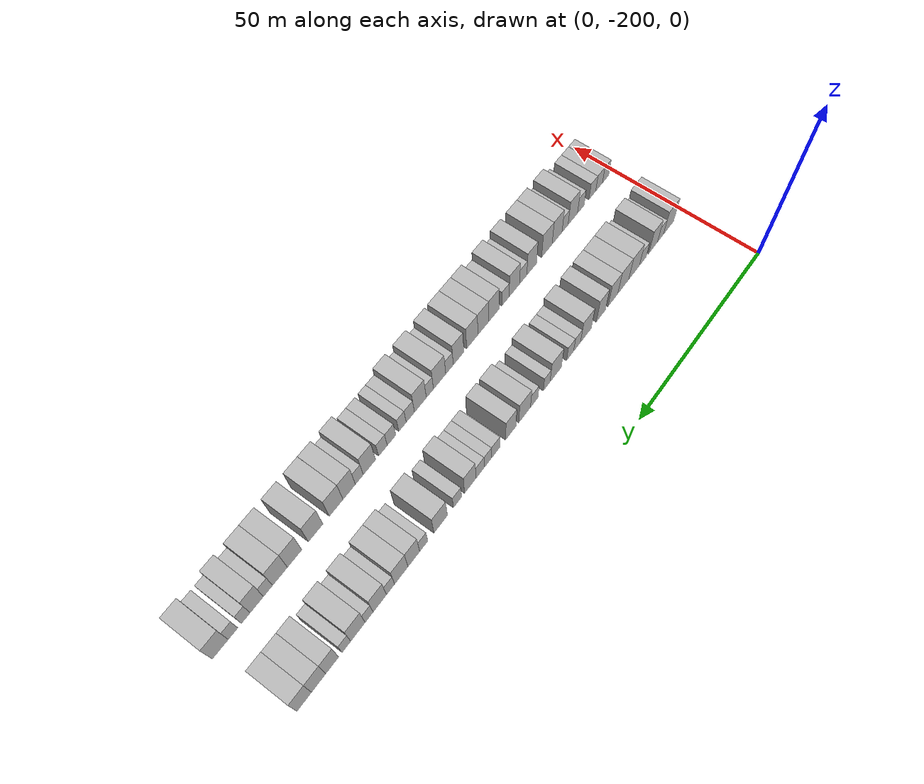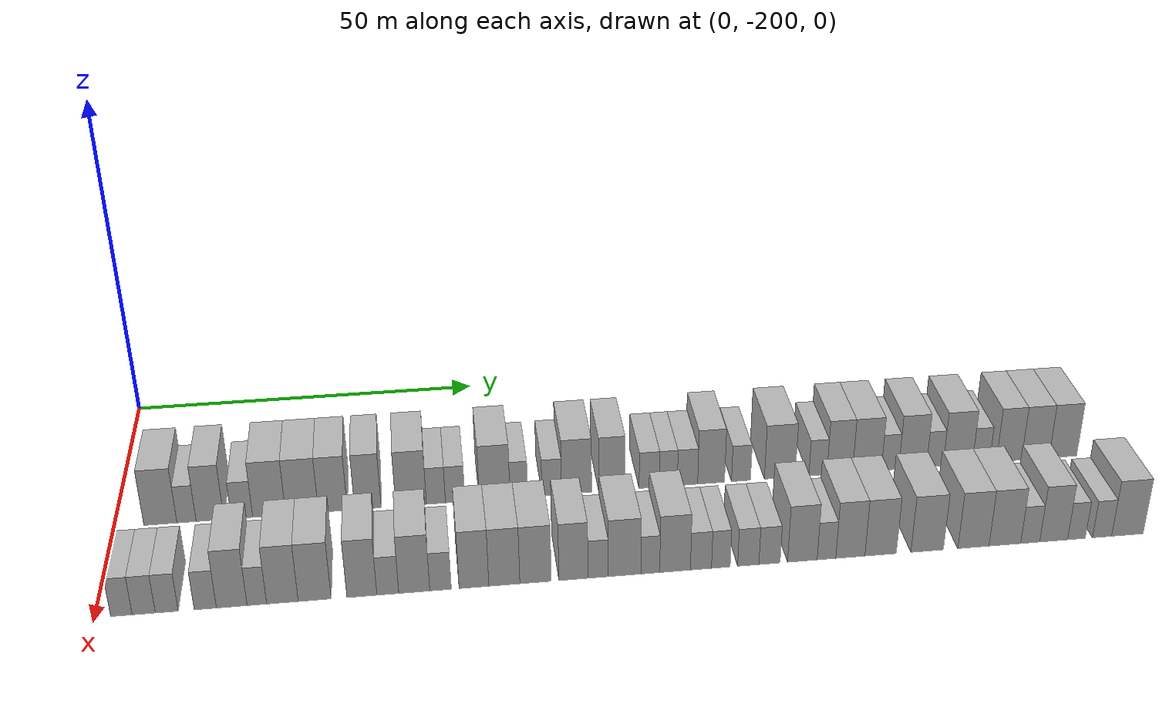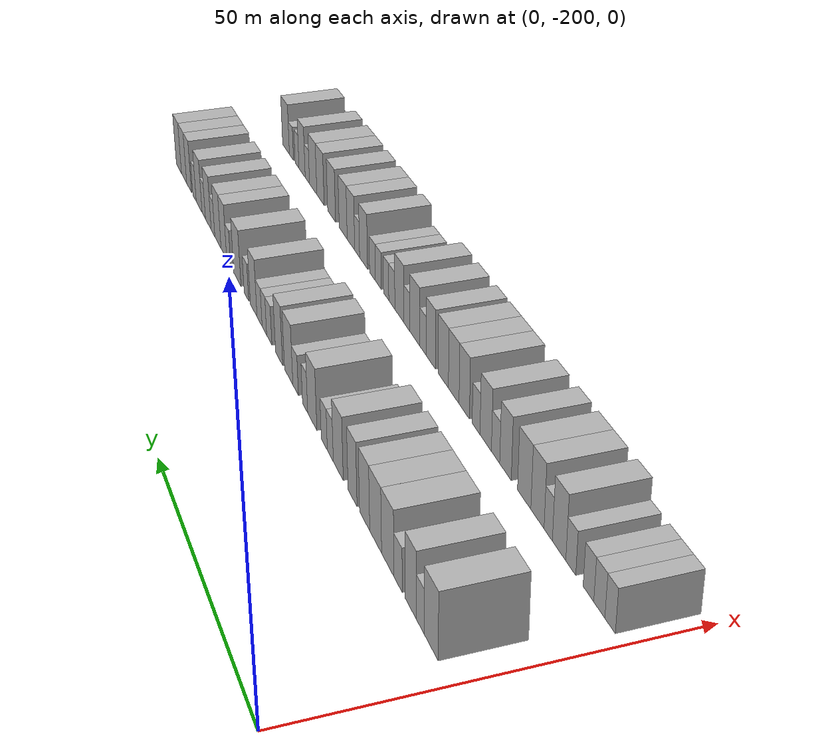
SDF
<sdf version="1.6">
 <world name="default">
  <model name="building_1">
   <static>0</static>
   <pose>25.0000 -193.7924 0 0.000000 0.000000 0.000000</pose>
   <link name="link">
    <pose>0 0 4.50 0 0 0</pose>
    <collision name="collision"><geometry><box><size>10.0000 4.4152 9.0000</size></box></geometry></collision>
    <visual name="visual">
     <cast_shadows>0</cast_shadows>
     <geometry><box><size>10.0000 4.4152 9.0000</size></box></geometry>
     <material>
      <script>
       <uri>model://HANNAS_wall/materials/scripts</uri>
       <uri>model://HANNAS_wall/materials/textures</uri>
       <name>vrc/HANNAS_wall</name>
      </script>
     </material>
    </visual>
   </link>
  </model>
  <model name="building_2">
   <static>1</static>
   <pose>25.0000 -190.3012 0 0.000000 0.000000 0.000000</pose>
   <link name="link">
    <pose>0 0 3.00 0 0 0</pose>
    <collision name="collision"><geometry><box><size>10.0000 2.5671 6.0000</size></box></geometry></collision>
    <visual name="visual">
     <cast_shadows>0</cast_shadows>
     <geometry><box><size>10.0000 2.5671 6.0000</size></box></geometry>
     <material>
      <script>
       <uri>model://HANNAS_wall/materials/scripts</uri>
       <uri>model://HANNAS_wall/materials/textures</uri>
       <name>vrc/HANNAS_wall</name>
      </script>
     </material>
    </visual>
   </link>
  </model>
  <model name="building_3">
   <static>1</static>
   <pose>25.0000 -187.1468 0 0.000000 0.000000 0.000000</pose>
   <link name="link">
    <pose>0 0 4.50 0 0 0</pose>
    <collision name="collision"><geometry><box><size>10.0000 3.7419 9.0000</size></box></geometry></collision>
    <visual name="visual">
     <cast_shadows>0</cast_shadows>
     <geometry><box><size>10.0000 3.7419 9.0000</size></box></geometry>
     <material>
      <script>
       <uri>model://HANNAS_wall/materials/scripts</uri>
       <uri>model://HANNAS_wall/materials/textures</uri>
       <name>vrc/HANNAS_wall</name>
      </script>
     </material>
    </visual>
   </link>
  </model>
  <model name="building_4">
   <static>1</static>
   <pose>25.0000 -182.8358 0 0.000000 0.000000 0.000000</pose>
   <link name="link">
    <pose>0 0 3.00 0 0 0</pose>
    <collision name="collision"><geometry><box><size>10.0000 2.8802 6.0000</size></box></geometry></collision>
    <visual name="visual">
     <cast_shadows>0</cast_shadows>
     <geometry><box><size>10.0000 2.8802 6.0000</size></box></geometry>
     <material>
      <script>
       <uri>model://HANNAS_wall/materials/scripts</uri>
       <uri>model://HANNAS_wall/materials/textures</uri>
       <name>vrc/HANNAS_wall</name>
      </script>
     </material>
    </visual>
   </link>
  </model>
  <model name="building_5">
   <static>1</static>
   <pose>25.0000 -179.1639 0 0.000000 0.000000 0.000000</pose>
   <link name="link">
    <pose>0 0 4.50 0 0 0</pose>
    <collision name="collision"><geometry><box><size>10.0000 4.4635 9.0000</size></box></geometry></collision>
    <visual name="visual">
     <cast_shadows>0</cast_shadows>
     <geometry><box><size>10.0000 4.4635 9.0000</size></box></geometry>
     <material>
      <script>
       <uri>model://HANNAS_wall/materials/scripts</uri>
       <uri>model://HANNAS_wall/materials/textures</uri>
       <name>vrc/HANNAS_wall</name>
      </script>
     </material>
    </visual>
   </link>
  </model>
  <model name="building_6">
   <static>1</static>
   <pose>25.0000 -174.7118 0 0.000000 0.000000 0.000000</pose>
   <link name="link">
    <pose>0 0 4.50 0 0 0</pose>
    <collision name="collision"><geometry><box><size>10.0000 4.4406 9.0000</size></box></geometry></collision>
    <visual name="visual">
     <cast_shadows>0</cast_shadows>
     <geometry><box><size>10.0000 4.4406 9.0000</size></box></geometry>
     <material>
      <script>
       <uri>model://HANNAS_wall/materials/scripts</uri>
       <uri>model://HANNAS_wall/materials/textures</uri>
       <name>vrc/HANNAS_wall</name>
      </script>
     </material>
    </visual>
   </link>
  </model>
  <model name="building_7">
   <static>1</static>
   <pose>25.0000 -170.5150 0 0.000000 0.000000 0.000000</pose>
   <link name="link">
    <pose>0 0 4.50 0 0 0</pose>
    <collision name="collision"><geometry><box><size>10.0000 3.9530 9.0000</size></box></geometry></collision>
    <visual name="visual">
     <cast_shadows>0</cast_shadows>
     <geometry><box><size>10.0000 3.9530 9.0000</size></box></geometry>
     <material>
      <script>
       <uri>model://HANNAS_wall/materials/scripts</uri>
       <uri>model://HANNAS_wall/materials/textures</uri>
       <name>vrc/HANNAS_wall</name>
      </script>
     </material>
    </visual>
   </link>
  </model>
  <model name="building_8">
   <static>1</static>
   <pose>25.0000 -165.7242 0 0.000000 0.000000 0.000000</pose>
   <link name="link">
    <pose>0 0 4.50 0 0 0</pose>
    <collision name="collision"><geometry><box><size>10.0000 3.6286 9.0000</size></box></geometry></collision>
    <visual name="visual">
     <cast_shadows>0</cast_shadows>
     <geometry><box><size>10.0000 3.6286 9.0000</size></box></geometry>
     <material>
      <script>
       <uri>model://HANNAS_wall/materials/scripts</uri>
       <uri>model://HANNAS_wall/materials/textures</uri>
       <name>vrc/HANNAS_wall</name>
      </script>
     </material>
    </visual>
   </link>
  </model>
  <model name="building_9">
   <static>1</static>
   <pose>25.0000 -159.7972 0 0.000000 0.000000 0.000000</pose>
   <link name="link">
    <pose>0 0 4.50 0 0 0</pose>
    <collision name="collision"><geometry><box><size>10.0000 4.2253 9.0000</size></box></geometry></collision>
    <visual name="visual">
     <cast_shadows>0</cast_shadows>
     <geometry><box><size>10.0000 4.2253 9.0000</size></box></geometry>
     <material>
      <script>
       <uri>model://HANNAS_wall/materials/scripts</uri>
       <uri>model://HANNAS_wall/materials/textures</uri>
       <name>vrc/HANNAS_wall</name>
      </script>
     </material>
    </visual>
   </link>
  </model>
  <model name="building_10">
   <static>1</static>
   <pose>25.0000 -156.3701 0 0.000000 0.000000 0.000000</pose>
   <link name="link">
    <pose>0 0 3.00 0 0 0</pose>
    <collision name="collision"><geometry><box><size>10.0000 2.6289 6.0000</size></box></geometry></collision>
    <visual name="visual">
     <cast_shadows>0</cast_shadows>
     <geometry><box><size>10.0000 2.6289 6.0000</size></box></geometry>
     <material>
      <script>
       <uri>model://HANNAS_wall/materials/scripts</uri>
       <uri>model://HANNAS_wall/materials/textures</uri>
       <name>vrc/HANNAS_wall</name>
      </script>
     </material>
    </visual>
   </link>
  </model>
  <model name="building_11">
   <static>1</static>
   <pose>25.0000 -153.7087 0 0.000000 0.000000 0.000000</pose>
   <link name="link">
    <pose>0 0 3.00 0 0 0</pose>
    <collision name="collision"><geometry><box><size>10.0000 2.6939 6.0000</size></box></geometry></collision>
    <visual name="visual">
     <cast_shadows>0</cast_shadows>
     <geometry><box><size>10.0000 2.6939 6.0000</size></box></geometry>
     <material>
      <script>
       <uri>model://HANNAS_wall/materials/scripts</uri>
       <uri>model://HANNAS_wall/materials/textures</uri>
       <name>vrc/HANNAS_wall</name>
      </script>
     </material>
    </visual>
   </link>
  </model>
  <model name="building_12">
   <static>1</static>
   <pose>25.0000 -148.2221 0 0.000000 0.000000 0.000000</pose>
   <link name="link">
    <pose>0 0 4.50 0 0 0</pose>
    <collision name="collision"><geometry><box><size>10.0000 4.2792 9.0000</size></box></geometry></collision>
    <visual name="visual">
     <cast_shadows>0</cast_shadows>
     <geometry><box><size>10.0000 4.2792 9.0000</size></box></geometry>
     <material>
      <script>
       <uri>model://HANNAS_wall/materials/scripts</uri>
       <uri>model://HANNAS_wall/materials/textures</uri>
       <name>vrc/HANNAS_wall</name>
      </script>
     </material>
    </visual>
   </link>
  </model>
  <model name="building_13">
   <static>1</static>
   <pose>25.0000 -144.8468 0 0.000000 0.000000 0.000000</pose>
   <link name="link">
    <pose>0 0 3.00 0 0 0</pose>
    <collision name="collision"><geometry><box><size>10.0000 2.4714 6.0000</size></box></geometry></collision>
    <visual name="visual">
     <cast_shadows>0</cast_shadows>
     <geometry><box><size>10.0000 2.4714 6.0000</size></box></geometry>
     <material>
      <script>
       <uri>model://HANNAS_wall/materials/scripts</uri>
       <uri>model://HANNAS_wall/materials/textures</uri>
       <name>vrc/HANNAS_wall</name>
      </script>
     </material>
    </visual>
   </link>
  </model>
  <model name="building_14">
   <static>1</static>
   <pose>25.0000 -140.2355 0 0.000000 0.000000 0.000000</pose>
   <link name="link">
    <pose>0 0 3.00 0 0 0</pose>
    <collision name="collision"><geometry><box><size>10.0000 2.7512 6.0000</size></box></geometry></collision>
    <visual name="visual">
     <cast_shadows>0</cast_shadows>
     <geometry><box><size>10.0000 2.7512 6.0000</size></box></geometry>
     <material>
      <script>
       <uri>model://HANNAS_wall/materials/scripts</uri>
       <uri>model://HANNAS_wall/materials/textures</uri>
       <name>vrc/HANNAS_wall</name>
      </script>
     </material>
    </visual>
   </link>
  </model>
  <model name="building_15">
   <static>1</static>
   <pose>25.0000 -136.7454 0 0.000000 0.000000 0.000000</pose>
   <link name="link">
    <pose>0 0 4.50 0 0 0</pose>
    <collision name="collision"><geometry><box><size>10.0000 4.2292 9.0000</size></box></geometry></collision>
    <visual name="visual">
     <cast_shadows>0</cast_shadows>
     <geometry><box><size>10.0000 4.2292 9.0000</size></box></geometry>
     <material>
      <script>
       <uri>model://HANNAS_wall/materials/scripts</uri>
       <uri>model://HANNAS_wall/materials/textures</uri>
       <name>vrc/HANNAS_wall</name>
      </script>
     </material>
    </visual>
   </link>
  </model>
  <model name="building_16">
   <static>1</static>
   <pose>25.0000 -131.7684 0 0.000000 0.000000 0.000000</pose>
   <link name="link">
    <pose>0 0 4.50 0 0 0</pose>
    <collision name="collision"><geometry><box><size>10.0000 3.7248 9.0000</size></box></geometry></collision>
    <visual name="visual">
     <cast_shadows>0</cast_shadows>
     <geometry><box><size>10.0000 3.7248 9.0000</size></box></geometry>
     <material>
      <script>
       <uri>model://HANNAS_wall/materials/scripts</uri>
       <uri>model://HANNAS_wall/materials/textures</uri>
       <name>vrc/HANNAS_wall</name>
      </script>
     </material>
    </visual>
   </link>
  </model>
  <model name="building_17">
   <static>1</static>
   <pose>25.0000 -126.4617 0 0.000000 0.000000 0.000000</pose>
   <link name="link">
    <pose>0 0 3.00 0 0 0</pose>
    <collision name="collision"><geometry><box><size>10.0000 2.8886 6.0000</size></box></geometry></collision>
    <visual name="visual">
     <cast_shadows>0</cast_shadows>
     <geometry><box><size>10.0000 2.8886 6.0000</size></box></geometry>
     <material>
      <script>
       <uri>model://HANNAS_wall/materials/scripts</uri>
       <uri>model://HANNAS_wall/materials/textures</uri>
       <name>vrc/HANNAS_wall</name>
      </script>
     </material>
    </visual>
   </link>
  </model>
  <model name="building_18">
   <static>1</static>
   <pose>25.0000 -123.7421 0 0.000000 0.000000 0.000000</pose>
   <link name="link">
    <pose>0 0 3.00 0 0 0</pose>
    <collision name="collision"><geometry><box><size>10.0000 2.5507 6.0000</size></box></geometry></collision>
    <visual name="visual">
     <cast_shadows>0</cast_shadows>
     <geometry><box><size>10.0000 2.5507 6.0000</size></box></geometry>
     <material>
      <script>
       <uri>model://HANNAS_wall/materials/scripts</uri>
       <uri>model://HANNAS_wall/materials/textures</uri>
       <name>vrc/HANNAS_wall</name>
      </script>
     </material>
    </visual>
   </link>
  </model>
  <model name="building_19">
   <static>1</static>
   <pose>25.0000 -121.0176 0 0.000000 0.000000 0.000000</pose>
   <link name="link">
    <pose>0 0 3.00 0 0 0</pose>
    <collision name="collision"><geometry><box><size>10.0000 2.8985 6.0000</size></box></geometry></collision>
    <visual name="visual">
     <cast_shadows>0</cast_shadows>
     <geometry><box><size>10.0000 2.8985 6.0000</size></box></geometry>
     <material>
      <script>
       <uri>model://HANNAS_wall/materials/scripts</uri>
       <uri>model://HANNAS_wall/materials/textures</uri>
       <name>vrc/HANNAS_wall</name>
      </script>
     </material>
    </visual>
   </link>
  </model>
  <model name="building_20">
   <static>1</static>
   <pose>25.0000 -117.6397 0 0.000000 0.000000 0.000000</pose>
   <link name="link">
    <pose>0 0 4.50 0 0 0</pose>
    <collision name="collision"><geometry><box><size>10.0000 3.8573 9.0000</size></box></geometry></collision>
    <visual name="visual">
     <cast_shadows>0</cast_shadows>
     <geometry><box><size>10.0000 3.8573 9.0000</size></box></geometry>
     <material>
      <script>
       <uri>model://HANNAS_wall/materials/scripts</uri>
       <uri>model://HANNAS_wall/materials/textures</uri>
       <name>vrc/HANNAS_wall</name>
      </script>
     </material>
    </visual>
   </link>
  </model>
  <model name="building_21">
   <static>1</static>
   <pose>25.0000 -113.3407 0 0.000000 0.000000 0.000000</pose>
   <link name="link">
    <pose>0 0 3.00 0 0 0</pose>
    <collision name="collision"><geometry><box><size>10.0000 2.7407 6.0000</size></box></geometry></collision>
    <visual name="visual">
     <cast_shadows>0</cast_shadows>
     <geometry><box><size>10.0000 2.7407 6.0000</size></box></geometry>
     <material>
      <script>
       <uri>model://HANNAS_wall/materials/scripts</uri>
       <uri>model://HANNAS_wall/materials/textures</uri>
       <name>vrc/HANNAS_wall</name>
      </script>
     </material>
    </visual>
   </link>
  </model>
  <model name="building_22">
   <static>1</static>
   <pose>25.0000 -107.7501 0 0.000000 0.000000 0.000000</pose>
   <link name="link">
    <pose>0 0 4.50 0 0 0</pose>
    <collision name="collision"><geometry><box><size>10.0000 4.4406 9.0000</size></box></geometry></collision>
    <visual name="visual">
     <cast_shadows>0</cast_shadows>
     <geometry><box><size>10.0000 4.4406 9.0000</size></box></geometry>
     <material>
      <script>
       <uri>model://HANNAS_wall/materials/scripts</uri>
       <uri>model://HANNAS_wall/materials/textures</uri>
       <name>vrc/HANNAS_wall</name>
      </script>
     </material>
    </visual>
   </link>
  </model>
  <model name="building_23">
   <static>1</static>
   <pose>25.0000 -102.2286 0 0.000000 0.000000 0.000000</pose>
   <link name="link">
    <pose>0 0 3.00 0 0 0</pose>
    <collision name="collision"><geometry><box><size>10.0000 2.6023 6.0000</size></box></geometry></collision>
    <visual name="visual">
     <cast_shadows>0</cast_shadows>
     <geometry><box><size>10.0000 2.6023 6.0000</size></box></geometry>
     <material>
      <script>
       <uri>model://HANNAS_wall/materials/scripts</uri>
       <uri>model://HANNAS_wall/materials/textures</uri>
       <name>vrc/HANNAS_wall</name>
      </script>
     </material>
    </visual>
   </link>
  </model>
  <model name="building_24">
   <static>1</static>
   <pose>25.0000 -99.0529 0 0.000000 0.000000 0.000000</pose>
   <link name="link">
    <pose>0 0 4.50 0 0 0</pose>
    <collision name="collision"><geometry><box><size>10.0000 3.7491 9.0000</size></box></geometry></collision>
    <visual name="visual">
     <cast_shadows>0</cast_shadows>
     <geometry><box><size>10.0000 3.7491 9.0000</size></box></geometry>
     <material>
      <script>
       <uri>model://HANNAS_wall/materials/scripts</uri>
       <uri>model://HANNAS_wall/materials/textures</uri>
       <name>vrc/HANNAS_wall</name>
      </script>
     </material>
    </visual>
   </link>
  </model>
  <model name="building_25">
   <static>1</static>
   <pose>25.0000 -95.0682 0 0.000000 0.000000 0.000000</pose>
   <link name="link">
    <pose>0 0 4.50 0 0 0</pose>
    <collision name="collision"><geometry><box><size>10.0000 4.2203 9.0000</size></box></geometry></collision>
    <visual name="visual">
     <cast_shadows>0</cast_shadows>
     <geometry><box><size>10.0000 4.2203 9.0000</size></box></geometry>
     <material>
      <script>
       <uri>model://HANNAS_wall/materials/scripts</uri>
       <uri>model://HANNAS_wall/materials/textures</uri>
       <name>vrc/HANNAS_wall</name>
      </script>
     </material>
    </visual>
   </link>
  </model>
  <model name="building_26">
   <static>1</static>
   <pose>25.0000 -91.6894 0 0.000000 0.000000 0.000000</pose>
   <link name="link">
    <pose>0 0 3.00 0 0 0</pose>
    <collision name="collision"><geometry><box><size>10.0000 2.5374 6.0000</size></box></geometry></collision>
    <visual name="visual">
     <cast_shadows>0</cast_shadows>
     <geometry><box><size>10.0000 2.5374 6.0000</size></box></geometry>
     <material>
      <script>
       <uri>model://HANNAS_wall/materials/scripts</uri>
       <uri>model://HANNAS_wall/materials/textures</uri>
       <name>vrc/HANNAS_wall</name>
      </script>
     </material>
    </visual>
   </link>
  </model>
  <model name="building_27">
   <static>1</static>
   <pose>25.0000 -88.3785 0 0.000000 0.000000 0.000000</pose>
   <link name="link">
    <pose>0 0 4.50 0 0 0</pose>
    <collision name="collision"><geometry><box><size>10.0000 4.0845 9.0000</size></box></geometry></collision>
    <visual name="visual">
     <cast_shadows>0</cast_shadows>
     <geometry><box><size>10.0000 4.0845 9.0000</size></box></geometry>
     <material>
      <script>
       <uri>model://HANNAS_wall/materials/scripts</uri>
       <uri>model://HANNAS_wall/materials/textures</uri>
       <name>vrc/HANNAS_wall</name>
      </script>
     </material>
    </visual>
   </link>
  </model>
  <model name="building_28">
   <static>1</static>
   <pose>25.0000 -85.1042 0 0.000000 0.000000 0.000000</pose>
   <link name="link">
    <pose>0 0 3.00 0 0 0</pose>
    <collision name="collision"><geometry><box><size>10.0000 2.4640 6.0000</size></box></geometry></collision>
    <visual name="visual">
     <cast_shadows>0</cast_shadows>
     <geometry><box><size>10.0000 2.4640 6.0000</size></box></geometry>
     <material>
      <script>
       <uri>model://HANNAS_wall/materials/scripts</uri>
       <uri>model://HANNAS_wall/materials/textures</uri>
       <name>vrc/HANNAS_wall</name>
      </script>
     </material>
    </visual>
   </link>
  </model>
  <model name="building_29">
   <static>1</static>
   <pose>25.0000 -81.7044 0 0.000000 0.000000 0.000000</pose>
   <link name="link">
    <pose>0 0 4.50 0 0 0</pose>
    <collision name="collision"><geometry><box><size>10.0000 4.3356 9.0000</size></box></geometry></collision>
    <visual name="visual">
     <cast_shadows>0</cast_shadows>
     <geometry><box><size>10.0000 4.3356 9.0000</size></box></geometry>
     <material>
      <script>
       <uri>model://HANNAS_wall/materials/scripts</uri>
       <uri>model://HANNAS_wall/materials/textures</uri>
       <name>vrc/HANNAS_wall</name>
      </script>
     </material>
    </visual>
   </link>
  </model>
  <model name="building_30">
   <static>1</static>
   <pose>25.0000 -78.2587 0 0.000000 0.000000 0.000000</pose>
   <link name="link">
    <pose>0 0 3.00 0 0 0</pose>
    <collision name="collision"><geometry><box><size>10.0000 2.5559 6.0000</size></box></geometry></collision>
    <visual name="visual">
     <cast_shadows>0</cast_shadows>
     <geometry><box><size>10.0000 2.5559 6.0000</size></box></geometry>
     <material>
      <script>
       <uri>model://HANNAS_wall/materials/scripts</uri>
       <uri>model://HANNAS_wall/materials/textures</uri>
       <name>vrc/HANNAS_wall</name>
      </script>
     </material>
    </visual>
   </link>
  </model>
  <model name="building_31">
   <static>1</static>
   <pose>25.0000 -74.0989 0 0.000000 0.000000 0.000000</pose>
   <link name="link">
    <pose>0 0 4.50 0 0 0</pose>
    <collision name="collision"><geometry><box><size>10.0000 3.7637 9.0000</size></box></geometry></collision>
    <visual name="visual">
     <cast_shadows>0</cast_shadows>
     <geometry><box><size>10.0000 3.7637 9.0000</size></box></geometry>
     <material>
      <script>
       <uri>model://HANNAS_wall/materials/scripts</uri>
       <uri>model://HANNAS_wall/materials/textures</uri>
       <name>vrc/HANNAS_wall</name>
      </script>
     </material>
    </visual>
   </link>
  </model>
  <model name="building_32">
   <static>1</static>
   <pose>25.0000 -70.1562 0 0.000000 0.000000 0.000000</pose>
   <link name="link">
    <pose>0 0 4.50 0 0 0</pose>
    <collision name="collision"><geometry><box><size>10.0000 4.1217 9.0000</size></box></geometry></collision>
    <visual name="visual">
     <cast_shadows>0</cast_shadows>
     <geometry><box><size>10.0000 4.1217 9.0000</size></box></geometry>
     <material>
      <script>
       <uri>model://HANNAS_wall/materials/scripts</uri>
       <uri>model://HANNAS_wall/materials/textures</uri>
       <name>vrc/HANNAS_wall</name>
      </script>
     </material>
    </visual>
   </link>
  </model>
  <model name="building_33">
   <static>1</static>
   <pose>25.0000 -66.0154 0 0.000000 0.000000 0.000000</pose>
   <link name="link">
    <pose>0 0 4.50 0 0 0</pose>
    <collision name="collision"><geometry><box><size>10.0000 4.1598 9.0000</size></box></geometry></collision>
    <visual name="visual">
     <cast_shadows>0</cast_shadows>
     <geometry><box><size>10.0000 4.1598 9.0000</size></box></geometry>
     <material>
      <script>
       <uri>model://HANNAS_wall/materials/scripts</uri>
       <uri>model://HANNAS_wall/materials/textures</uri>
       <name>vrc/HANNAS_wall</name>
      </script>
     </material>
    </visual>
   </link>
  </model>
  <model name="building_106">
   <static>1</static>
   <pose>44.0000 -196.6727 0 0.000000 0.000000 0.000000</pose>
   <link name="link">
    <pose>0 0 3.00 0 0 0</pose>
    <collision name="collision"><geometry><box><size>10.0000 2.6546 6.0000</size></box></geometry></collision>
    <visual name="visual">
     <cast_shadows>0</cast_shadows>
     <geometry><box><size>10.0000 2.6546 6.0000</size></box></geometry>
     <material>
      <script>
       <uri>model://HANNAS_wall/materials/scripts</uri>
       <uri>model://HANNAS_wall/materials/textures</uri>
       <name>vrc/HANNAS_wall</name>
      </script>
     </material>
    </visual>
   </link>
  </model>
  <model name="building_107">
   <static>1</static>
   <pose>44.0000 -193.9100 0 0.000000 0.000000 0.000000</pose>
   <link name="link">
    <pose>0 0 3.00 0 0 0</pose>
    <collision name="collision"><geometry><box><size>10.0000 2.8708 6.0000</size></box></geometry></collision>
    <visual name="visual">
     <cast_shadows>0</cast_shadows>
     <geometry><box><size>10.0000 2.8708 6.0000</size></box></geometry>
     <material>
      <script>
       <uri>model://HANNAS_wall/materials/scripts</uri>
       <uri>model://HANNAS_wall/materials/textures</uri>
       <name>vrc/HANNAS_wall</name>
      </script>
     </material>
    </visual>
   </link>
  </model>
  <model name="building_108">
   <static>1</static>
   <pose>44.0000 -191.0580 0 0.000000 0.000000 0.000000</pose>
   <link name="link">
    <pose>0 0 3.00 0 0 0</pose>
    <collision name="collision"><geometry><box><size>10.0000 2.8331 6.0000</size></box></geometry></collision>
    <visual name="visual">
     <cast_shadows>0</cast_shadows>
     <geometry><box><size>10.0000 2.8331 6.0000</size></box></geometry>
     <material>
      <script>
       <uri>model://HANNAS_wall/materials/scripts</uri>
       <uri>model://HANNAS_wall/materials/textures</uri>
       <name>vrc/HANNAS_wall</name>
      </script>
     </material>
    </visual>
   </link>
  </model>
  <model name="building_109">
   <static>1</static>
   <pose>44.0000 -186.2593 0 0.000000 0.000000 0.000000</pose>
   <link name="link">
    <pose>0 0 3.00 0 0 0</pose>
    <collision name="collision"><geometry><box><size>10.0000 2.7644 6.0000</size></box></geometry></collision>
    <visual name="visual">
     <cast_shadows>0</cast_shadows>
     <geometry><box><size>10.0000 2.7644 6.0000</size></box></geometry>
     <material>
      <script>
       <uri>model://HANNAS_wall/materials/scripts</uri>
       <uri>model://HANNAS_wall/materials/textures</uri>
       <name>vrc/HANNAS_wall</name>
      </script>
     </material>
    </visual>
   </link>
  </model>
  <model name="building_110">
   <static>1</static>
   <pose>44.0000 -182.9560 0 0.000000 0.000000 0.000000</pose>
   <link name="link">
    <pose>0 0 4.50 0 0 0</pose>
    <collision name="collision"><geometry><box><size>10.0000 3.8422 9.0000</size></box></geometry></collision>
    <visual name="visual">
     <cast_shadows>0</cast_shadows>
     <geometry><box><size>10.0000 3.8422 9.0000</size></box></geometry>
     <material>
      <script>
       <uri>model://HANNAS_wall/materials/scripts</uri>
       <uri>model://HANNAS_wall/materials/textures</uri>
       <name>vrc/HANNAS_wall</name>
      </script>
     </material>
    </visual>
   </link>
  </model>
  <model name="building_111">
   <static>1</static>
   <pose>44.0000 -179.8076 0 0.000000 0.000000 0.000000</pose>
   <link name="link">
    <pose>0 0 3.00 0 0 0</pose>
    <collision name="collision"><geometry><box><size>10.0000 2.4547 6.0000</size></box></geometry></collision>
    <visual name="visual">
     <cast_shadows>0</cast_shadows>
     <geometry><box><size>10.0000 2.4547 6.0000</size></box></geometry>
     <material>
      <script>
       <uri>model://HANNAS_wall/materials/scripts</uri>
       <uri>model://HANNAS_wall/materials/textures</uri>
       <name>vrc/HANNAS_wall</name>
      </script>
     </material>
    </visual>
   </link>
  </model>
  <model name="building_112">
   <static>1</static>
   <pose>44.0000 -176.5887 0 0.000000 0.000000 0.000000</pose>
   <link name="link">
    <pose>0 0 4.50 0 0 0</pose>
    <collision name="collision"><geometry><box><size>10.0000 3.9832 9.0000</size></box></geometry></collision>
    <visual name="visual">
     <cast_shadows>0</cast_shadows>
     <geometry><box><size>10.0000 3.9832 9.0000</size></box></geometry>
     <material>
      <script>
       <uri>model://HANNAS_wall/materials/scripts</uri>
       <uri>model://HANNAS_wall/materials/textures</uri>
       <name>vrc/HANNAS_wall</name>
      </script>
     </material>
    </visual>
   </link>
  </model>
  <model name="building_113">
   <static>1</static>
   <pose>44.0000 -172.5110 0 0.000000 0.000000 0.000000</pose>
   <link name="link">
    <pose>0 0 4.50 0 0 0</pose>
    <collision name="collision"><geometry><box><size>10.0000 4.1722 9.0000</size></box></geometry></collision>
    <visual name="visual">
     <cast_shadows>0</cast_shadows>
     <geometry><box><size>10.0000 4.1722 9.0000</size></box></geometry>
     <material>
      <script>
       <uri>model://HANNAS_wall/materials/scripts</uri>
       <uri>model://HANNAS_wall/materials/textures</uri>
       <name>vrc/HANNAS_wall</name>
      </script>
     </material>
    </visual>
   </link>
  </model>
  <model name="building_114">
   <static>1</static>
   <pose>44.0000 -166.5186 0 0.000000 0.000000 0.000000</pose>
   <link name="link">
    <pose>0 0 4.50 0 0 0</pose>
    <collision name="collision"><geometry><box><size>10.0000 3.8126 9.0000</size></box></geometry></collision>
    <visual name="visual">
     <cast_shadows>0</cast_shadows>
     <geometry><box><size>10.0000 3.8126 9.0000</size></box></geometry>
     <material>
      <script>
       <uri>model://HANNAS_wall/materials/scripts</uri>
       <uri>model://HANNAS_wall/materials/textures</uri>
       <name>vrc/HANNAS_wall</name>
      </script>
     </material>
    </visual>
   </link>
  </model>
  <model name="building_115">
   <static>1</static>
   <pose>44.0000 -163.2137 0 0.000000 0.000000 0.000000</pose>
   <link name="link">
    <pose>0 0 3.00 0 0 0</pose>
    <collision name="collision"><geometry><box><size>10.0000 2.7972 6.0000</size></box></geometry></collision>
    <visual name="visual">
     <cast_shadows>0</cast_shadows>
     <geometry><box><size>10.0000 2.7972 6.0000</size></box></geometry>
     <material>
      <script>
       <uri>model://HANNAS_wall/materials/scripts</uri>
       <uri>model://HANNAS_wall/materials/textures</uri>
       <name>vrc/HANNAS_wall</name>
      </script>
     </material>
    </visual>
   </link>
  </model>
  <model name="building_116">
   <static>1</static>
   <pose>44.0000 -159.8278 0 0.000000 0.000000 0.000000</pose>
   <link name="link">
    <pose>0 0 4.50 0 0 0</pose>
    <collision name="collision"><geometry><box><size>10.0000 3.9745 9.0000</size></box></geometry></collision>
    <visual name="visual">
     <cast_shadows>0</cast_shadows>
     <geometry><box><size>10.0000 3.9745 9.0000</size></box></geometry>
     <material>
      <script>
       <uri>model://HANNAS_wall/materials/scripts</uri>
       <uri>model://HANNAS_wall/materials/textures</uri>
       <name>vrc/HANNAS_wall</name>
      </script>
     </material>
    </visual>
   </link>
  </model>
  <model name="building_117">
   <static>1</static>
   <pose>44.0000 -156.4565 0 0.000000 0.000000 0.000000</pose>
   <link name="link">
    <pose>0 0 3.00 0 0 0</pose>
    <collision name="collision"><geometry><box><size>10.0000 2.7681 6.0000</size></box></geometry></collision>
    <visual name="visual">
     <cast_shadows>0</cast_shadows>
     <geometry><box><size>10.0000 2.7681 6.0000</size></box></geometry>
     <material>
      <script>
       <uri>model://HANNAS_wall/materials/scripts</uri>
       <uri>model://HANNAS_wall/materials/textures</uri>
       <name>vrc/HANNAS_wall</name>
      </script>
     </material>
    </visual>
   </link>
  </model>
  <model name="building_118">
   <static>1</static>
   <pose>44.0000 -152.1533 0 0.000000 0.000000 0.000000</pose>
   <link name="link">
    <pose>0 0 4.50 0 0 0</pose>
    <collision name="collision"><geometry><box><size>10.0000 3.8383 9.0000</size></box></geometry></collision>
    <visual name="visual">
     <cast_shadows>0</cast_shadows>
     <geometry><box><size>10.0000 3.8383 9.0000</size></box></geometry>
     <material>
      <script>
       <uri>model://HANNAS_wall/materials/scripts</uri>
       <uri>model://HANNAS_wall/materials/textures</uri>
       <name>vrc/HANNAS_wall</name>
      </script>
     </material>
    </visual>
   </link>
  </model>
  <model name="building_119">
   <static>1</static>
   <pose>44.0000 -148.2184 0 0.000000 0.000000 0.000000</pose>
   <link name="link">
    <pose>0 0 4.50 0 0 0</pose>
    <collision name="collision"><geometry><box><size>10.0000 4.0315 9.0000</size></box></geometry></collision>
    <visual name="visual">
     <cast_shadows>0</cast_shadows>
     <geometry><box><size>10.0000 4.0315 9.0000</size></box></geometry>
     <material>
      <script>
       <uri>model://HANNAS_wall/materials/scripts</uri>
       <uri>model://HANNAS_wall/materials/textures</uri>
       <name>vrc/HANNAS_wall</name>
      </script>
     </material>
    </visual>
   </link>
  </model>
  <model name="building_120">
   <static>1</static>
   <pose>44.0000 -144.1579 0 0.000000 0.000000 0.000000</pose>
   <link name="link">
    <pose>0 0 4.50 0 0 0</pose>
    <collision name="collision"><geometry><box><size>10.0000 4.0895 9.0000</size></box></geometry></collision>
    <visual name="visual">
     <cast_shadows>0</cast_shadows>
     <geometry><box><size>10.0000 4.0895 9.0000</size></box></geometry>
     <material>
      <script>
       <uri>model://HANNAS_wall/materials/scripts</uri>
       <uri>model://HANNAS_wall/materials/textures</uri>
       <name>vrc/HANNAS_wall</name>
      </script>
     </material>
    </visual>
   </link>
  </model>
  <model name="building_121">
   <static>1</static>
   <pose>44.0000 -139.2148 0 0.000000 0.000000 0.000000</pose>
   <link name="link">
    <pose>0 0 4.50 0 0 0</pose>
    <collision name="collision"><geometry><box><size>10.0000 3.7968 9.0000</size></box></geometry></collision>
    <visual name="visual">
     <cast_shadows>0</cast_shadows>
     <geometry><box><size>10.0000 3.7968 9.0000</size></box></geometry>
     <material>
      <script>
       <uri>model://HANNAS_wall/materials/scripts</uri>
       <uri>model://HANNAS_wall/materials/textures</uri>
       <name>vrc/HANNAS_wall</name>
      </script>
     </material>
    </visual>
   </link>
  </model>
  <model name="building_122">
   <static>1</static>
   <pose>44.0000 -135.9818 0 0.000000 0.000000 0.000000</pose>
   <link name="link">
    <pose>0 0 3.00 0 0 0</pose>
    <collision name="collision"><geometry><box><size>10.0000 2.6690 6.0000</size></box></geometry></collision>
    <visual name="visual">
     <cast_shadows>0</cast_shadows>
     <geometry><box><size>10.0000 2.6690 6.0000</size></box></geometry>
     <material>
      <script>
       <uri>model://HANNAS_wall/materials/scripts</uri>
       <uri>model://HANNAS_wall/materials/textures</uri>
       <name>vrc/HANNAS_wall</name>
      </script>
     </material>
    </visual>
   </link>
  </model>
  <model name="building_123">
   <static>1</static>
   <pose>44.0000 -132.4999 0 0.000000 0.000000 0.000000</pose>
   <link name="link">
    <pose>0 0 4.50 0 0 0</pose>
    <collision name="collision"><geometry><box><size>10.0000 4.2948 9.0000</size></box></geometry></collision>
    <visual name="visual">
     <cast_shadows>0</cast_shadows>
     <geometry><box><size>10.0000 4.2948 9.0000</size></box></geometry>
     <material>
      <script>
       <uri>model://HANNAS_wall/materials/scripts</uri>
       <uri>model://HANNAS_wall/materials/textures</uri>
       <name>vrc/HANNAS_wall</name>
      </script>
     </material>
    </visual>
   </link>
  </model>
  <model name="building_124">
   <static>1</static>
   <pose>44.0000 -129.1109 0 0.000000 0.000000 0.000000</pose>
   <link name="link">
    <pose>0 0 3.00 0 0 0</pose>
    <collision name="collision"><geometry><box><size>10.0000 2.4833 6.0000</size></box></geometry></collision>
    <visual name="visual">
     <cast_shadows>0</cast_shadows>
     <geometry><box><size>10.0000 2.4833 6.0000</size></box></geometry>
     <material>
      <script>
       <uri>model://HANNAS_wall/materials/scripts</uri>
       <uri>model://HANNAS_wall/materials/textures</uri>
       <name>vrc/HANNAS_wall</name>
      </script>
     </material>
    </visual>
   </link>
  </model>
  <model name="building_125">
   <static>1</static>
   <pose>44.0000 -125.8306 0 0.000000 0.000000 0.000000</pose>
   <link name="link">
    <pose>0 0 4.50 0 0 0</pose>
    <collision name="collision"><geometry><box><size>10.0000 4.0773 9.0000</size></box></geometry></collision>
    <visual name="visual">
     <cast_shadows>0</cast_shadows>
     <geometry><box><size>10.0000 4.0773 9.0000</size></box></geometry>
     <material>
      <script>
       <uri>model://HANNAS_wall/materials/scripts</uri>
       <uri>model://HANNAS_wall/materials/textures</uri>
       <name>vrc/HANNAS_wall</name>
      </script>
     </material>
    </visual>
   </link>
  </model>
  <model name="building_126">
   <static>1</static>
   <pose>44.0000 -122.3905 0 0.000000 0.000000 0.000000</pose>
   <link name="link">
    <pose>0 0 3.00 0 0 0</pose>
    <collision name="collision"><geometry><box><size>10.0000 2.8029 6.0000</size></box></geometry></collision>
    <visual name="visual">
     <cast_shadows>0</cast_shadows>
     <geometry><box><size>10.0000 2.8029 6.0000</size></box></geometry>
     <material>
      <script>
       <uri>model://HANNAS_wall/materials/scripts</uri>
       <uri>model://HANNAS_wall/materials/textures</uri>
       <name>vrc/HANNAS_wall</name>
      </script>
     </material>
    </visual>
   </link>
  </model>
  <model name="building_127">
   <static>1</static>
   <pose>44.0000 -119.7441 0 0.000000 0.000000 0.000000</pose>
   <link name="link">
    <pose>0 0 3.00 0 0 0</pose>
    <collision name="collision"><geometry><box><size>10.0000 2.4900 6.0000</size></box></geometry></collision>
    <visual name="visual">
     <cast_shadows>0</cast_shadows>
     <geometry><box><size>10.0000 2.4900 6.0000</size></box></geometry>
     <material>
      <script>
       <uri>model://HANNAS_wall/materials/scripts</uri>
       <uri>model://HANNAS_wall/materials/textures</uri>
       <name>vrc/HANNAS_wall</name>
      </script>
     </material>
    </visual>
   </link>
  </model>
  <model name="building_128">
   <static>1</static>
   <pose>44.0000 -116.0726 0 0.000000 0.000000 0.000000</pose>
   <link name="link">
    <pose>0 0 3.00 0 0 0</pose>
    <collision name="collision"><geometry><box><size>10.0000 2.8530 6.0000</size></box></geometry></collision>
    <visual name="visual">
     <cast_shadows>0</cast_shadows>
     <geometry><box><size>10.0000 2.8530 6.0000</size></box></geometry>
     <material>
      <script>
       <uri>model://HANNAS_wall/materials/scripts</uri>
       <uri>model://HANNAS_wall/materials/textures</uri>
       <name>vrc/HANNAS_wall</name>
      </script>
     </material>
    </visual>
   </link>
  </model>
  <model name="building_129">
   <static>1</static>
   <pose>44.0000 -113.2252 0 0.000000 0.000000 0.000000</pose>
   <link name="link">
    <pose>0 0 3.00 0 0 0</pose>
    <collision name="collision"><geometry><box><size>10.0000 2.8418 6.0000</size></box></geometry></collision>
    <visual name="visual">
     <cast_shadows>0</cast_shadows>
     <geometry><box><size>10.0000 2.8418 6.0000</size></box></geometry>
     <material>
      <script>
       <uri>model://HANNAS_wall/materials/scripts</uri>
       <uri>model://HANNAS_wall/materials/textures</uri>
       <name>vrc/HANNAS_wall</name>
      </script>
     </material>
    </visual>
   </link>
  </model>
  <model name="building_130">
   <static>1</static>
   <pose>44.0000 -108.8053 0 0.000000 0.000000 0.000000</pose>
   <link name="link">
    <pose>0 0 4.50 0 0 0</pose>
    <collision name="collision"><geometry><box><size>10.0000 3.9981 9.0000</size></box></geometry></collision>
    <visual name="visual">
     <cast_shadows>0</cast_shadows>
     <geometry><box><size>10.0000 3.9981 9.0000</size></box></geometry>
     <material>
      <script>
       <uri>model://HANNAS_wall/materials/scripts</uri>
       <uri>model://HANNAS_wall/materials/textures</uri>
       <name>vrc/HANNAS_wall</name>
      </script>
     </material>
    </visual>
   </link>
  </model>
  <model name="building_131">
   <static>1</static>
   <pose>44.0000 -105.5471 0 0.000000 0.000000 0.000000</pose>
   <link name="link">
    <pose>0 0 3.00 0 0 0</pose>
    <collision name="collision"><geometry><box><size>10.0000 2.5182 6.0000</size></box></geometry></collision>
    <visual name="visual">
     <cast_shadows>0</cast_shadows>
     <geometry><box><size>10.0000 2.5182 6.0000</size></box></geometry>
     <material>
      <script>
       <uri>model://HANNAS_wall/materials/scripts</uri>
       <uri>model://HANNAS_wall/materials/textures</uri>
       <name>vrc/HANNAS_wall</name>
      </script>
     </material>
    </visual>
   </link>
  </model>
  <model name="building_132">
   <static>1</static>
   <pose>44.0000 -102.3120 0 0.000000 0.000000 0.000000</pose>
   <link name="link">
    <pose>0 0 4.50 0 0 0</pose>
    <collision name="collision"><geometry><box><size>10.0000 3.9521 9.0000</size></box></geometry></collision>
    <visual name="visual">
     <cast_shadows>0</cast_shadows>
     <geometry><box><size>10.0000 3.9521 9.0000</size></box></geometry>
     <material>
      <script>
       <uri>model://HANNAS_wall/materials/scripts</uri>
       <uri>model://HANNAS_wall/materials/textures</uri>
       <name>vrc/HANNAS_wall</name>
      </script>
     </material>
    </visual>
   </link>
  </model>
  <model name="building_133">
   <static>1</static>
   <pose>44.0000 -98.1961 0 0.000000 0.000000 0.000000</pose>
   <link name="link">
    <pose>0 0 4.50 0 0 0</pose>
    <collision name="collision"><geometry><box><size>10.0000 4.2796 9.0000</size></box></geometry></collision>
    <visual name="visual">
     <cast_shadows>0</cast_shadows>
     <geometry><box><size>10.0000 4.2796 9.0000</size></box></geometry>
     <material>
      <script>
       <uri>model://HANNAS_wall/materials/scripts</uri>
       <uri>model://HANNAS_wall/materials/textures</uri>
       <name>vrc/HANNAS_wall</name>
      </script>
     </material>
    </visual>
   </link>
  </model>
  <model name="building_134">
   <static>1</static>
   <pose>44.0000 -91.8292 0 0.000000 0.000000 0.000000</pose>
   <link name="link">
    <pose>0 0 4.50 0 0 0</pose>
    <collision name="collision"><geometry><box><size>10.0000 4.4544 9.0000</size></box></geometry></collision>
    <visual name="visual">
     <cast_shadows>0</cast_shadows>
     <geometry><box><size>10.0000 4.4544 9.0000</size></box></geometry>
     <material>
      <script>
       <uri>model://HANNAS_wall/materials/scripts</uri>
       <uri>model://HANNAS_wall/materials/textures</uri>
       <name>vrc/HANNAS_wall</name>
      </script>
     </material>
    </visual>
   </link>
  </model>
  <model name="building_135">
   <static>1</static>
   <pose>44.0000 -85.4560 0 0.000000 0.000000 0.000000</pose>
   <link name="link">
    <pose>0 0 4.50 0 0 0</pose>
    <collision name="collision"><geometry><box><size>10.0000 4.2920 9.0000</size></box></geometry></collision>
    <visual name="visual">
     <cast_shadows>0</cast_shadows>
     <geometry><box><size>10.0000 4.2920 9.0000</size></box></geometry>
     <material>
      <script>
       <uri>model://HANNAS_wall/materials/scripts</uri>
       <uri>model://HANNAS_wall/materials/textures</uri>
       <name>vrc/HANNAS_wall</name>
      </script>
     </material>
    </visual>
   </link>
  </model>
  <model name="building_136">
   <static>1</static>
   <pose>44.0000 -81.1121 0 0.000000 0.000000 0.000000</pose>
   <link name="link">
    <pose>0 0 4.50 0 0 0</pose>
    <collision name="collision"><geometry><box><size>10.0000 4.3959 9.0000</size></box></geometry></collision>
    <visual name="visual">
     <cast_shadows>0</cast_shadows>
     <geometry><box><size>10.0000 4.3959 9.0000</size></box></geometry>
     <material>
      <script>
       <uri>model://HANNAS_wall/materials/scripts</uri>
       <uri>model://HANNAS_wall/materials/textures</uri>
       <name>vrc/HANNAS_wall</name>
      </script>
     </material>
    </visual>
   </link>
  </model>
  <model name="building_137">
   <static>1</static>
   <pose>44.0000 -77.5921 0 0.000000 0.000000 0.000000</pose>
   <link name="link">
    <pose>0 0 3.00 0 0 0</pose>
    <collision name="collision"><geometry><box><size>10.0000 2.6442 6.0000</size></box></geometry></collision>
    <visual name="visual">
     <cast_shadows>0</cast_shadows>
     <geometry><box><size>10.0000 2.6442 6.0000</size></box></geometry>
     <material>
      <script>
       <uri>model://HANNAS_wall/materials/scripts</uri>
       <uri>model://HANNAS_wall/materials/textures</uri>
       <name>vrc/HANNAS_wall</name>
      </script>
     </material>
    </visual>
   </link>
  </model>
  <model name="building_138">
   <static>1</static>
   <pose>44.0000 -74.3266 0 0.000000 0.000000 0.000000</pose>
   <link name="link">
    <pose>0 0 4.50 0 0 0</pose>
    <collision name="collision"><geometry><box><size>10.0000 3.8867 9.0000</size></box></geometry></collision>
    <visual name="visual">
     <cast_shadows>0</cast_shadows>
     <geometry><box><size>10.0000 3.8867 9.0000</size></box></geometry>
     <material>
      <script>
       <uri>model://HANNAS_wall/materials/scripts</uri>
       <uri>model://HANNAS_wall/materials/textures</uri>
       <name>vrc/HANNAS_wall</name>
      </script>
     </material>
    </visual>
   </link>
  </model>
  <model name="building_139">
   <static>1</static>
   <pose>44.0000 -71.1424 0 0.000000 0.000000 0.000000</pose>
   <link name="link">
    <pose>0 0 3.00 0 0 0</pose>
    <collision name="collision"><geometry><box><size>10.0000 2.4818 6.0000</size></box></geometry></collision>
    <visual name="visual">
     <cast_shadows>0</cast_shadows>
     <geometry><box><size>10.0000 2.4818 6.0000</size></box></geometry>
     <material>
      <script>
       <uri>model://HANNAS_wall/materials/scripts</uri>
       <uri>model://HANNAS_wall/materials/textures</uri>
       <name>vrc/HANNAS_wall</name>
      </script>
     </material>
    </visual>
   </link>
  </model>
  <model name="building_140">
   <static>1</static>
   <pose>44.0000 -67.5530 0 0.000000 0.000000 0.000000</pose>
   <link name="link">
    <pose>0 0 3.00 0 0 0</pose>
    <collision name="collision"><geometry><box><size>10.0000 2.6970 6.0000</size></box></geometry></collision>
    <visual name="visual">
     <cast_shadows>0</cast_shadows>
     <geometry><box><size>10.0000 2.6970 6.0000</size></box></geometry>
     <material>
      <script>
       <uri>model://HANNAS_wall/materials/scripts</uri>
       <uri>model://HANNAS_wall/materials/textures</uri>
       <name>vrc/HANNAS_wall</name>
      </script>
     </material>
    </visual>
   </link>
  </model>
  <model name="building_141">
   <static>1</static>
   <pose>44.0000 -63.9862 0 0.000000 0.000000 0.000000</pose>
   <link name="link">
    <pose>0 0 4.50 0 0 0</pose>
    <collision name="collision"><geometry><box><size>10.0000 4.4366 9.0000</size></box></geometry></collision>
    <visual name="visual">
     <cast_shadows>0</cast_shadows>
     <geometry><box><size>10.0000 4.4366 9.0000</size></box></geometry>
     <material>
      <script>
       <uri>model://HANNAS_wall/materials/scripts</uri>
       <uri>model://HANNAS_wall/materials/textures</uri>
       <name>vrc/HANNAS_wall</name>
      </script>
     </material>
    </visual>
   </link>
  </model>
 </world>
</sdf>
